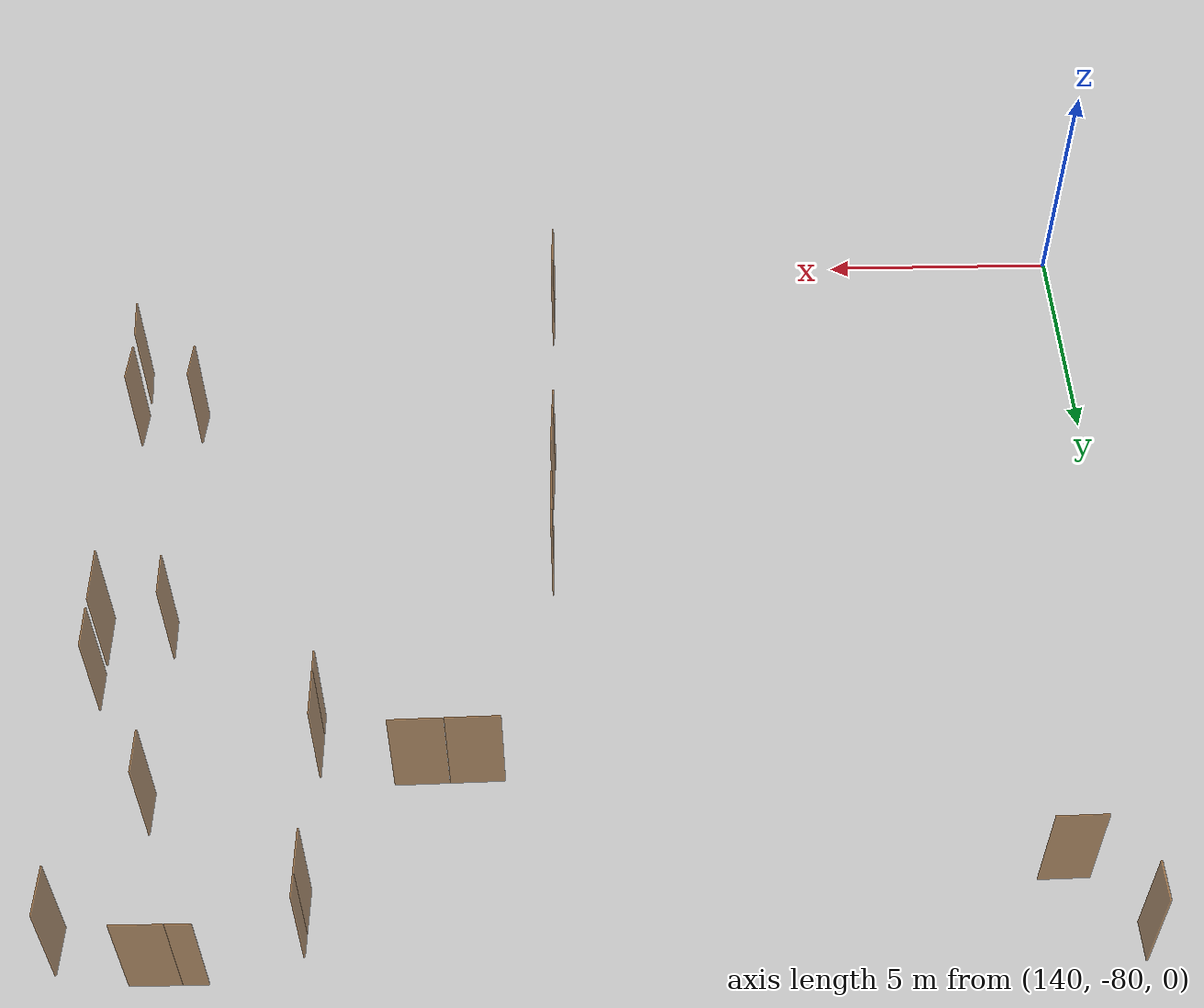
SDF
<sdf version="1.7">
 <world name="sim_world">
  <model name="puerta89">
   <pose>160.44088876173322 -76.53324441789132 0.0 0 0 1.6495602129165794</pose>
   <link name="right">
    <pose>0 0 1.11 0 0 0</pose>
    <visual name="right_visual">
     <geometry><box><size>0.9247008043293189 0.03 2.2</size></box></geometry>
     <material>
      <ambient>0.5 0.25 0 0.6</ambient>
      <diffuse>0.5 0.25 0 0.6</diffuse>
      <pbr><metal><metalness>0.0</metalness></metal></pbr>
     </material>
    </visual>
    <collision name="right_collision">
     <geometry><box><size>0.9247008043293189 0.03 2.2</size></box></geometry>
     <surface><contact><collide_bitmask>0x02</collide_bitmask></contact></surface>
    </collision>
    <inertial>
     <mass>50.0</mass>
     <inertia><ixx>20.17041666666667</ixx><iyy>23.729464906363713</iyy><izz>3.566548239697039</izz></inertia>
    </inertial>
   </link>
   <joint name="right_joint" type="revolute">
    <parent>world</parent>
    <child>right</child>
    <axis><xyz>0 0 1</xyz><limit><lower>0</lower><upper>1.57</upper></limit></axis>
    <pose>0.46735040216465945 0 0 0 0 0</pose>
   </joint>
   <plugin name="register_component" filename="libregister_component.so">
    <component name="Door">
     <v_max_door>0.5</v_max_door>
     <a_max_door>0.3</a_max_door>
     <a_nom_door>0.15</a_nom_door>
     <dx_min_door>0.01</dx_min_door>
     <f_max_door>500.0</f_max_door>
     <ros_interface>true</ros_interface>
     <door name="puerta89" type="SwingDoor" left_joint_name="empty_joint" right_joint_name="right_joint"/>
    </component>
   </plugin>
  </model>
  <model name="puerta90">
   <pose>160.43476705977383 -75.268071642846 0.0 0 0 -1.6405030245786656</pose>
   <link name="right">
    <pose>0 0 1.11 0 0 0</pose>
    <visual name="right_visual">
     <geometry><box><size>0.8701283201981976 0.03 2.2</size></box></geometry>
     <material>
      <ambient>0.5 0.25 0 0.6</ambient>
      <diffuse>0.5 0.25 0 0.6</diffuse>
      <pbr><metal><metalness>0.0</metalness></metal></pbr>
     </material>
    </visual>
    <collision name="right_collision">
     <geometry><box><size>0.8701283201981976 0.03 2.2</size></box></geometry>
     <surface><contact><collide_bitmask>0x02</collide_bitmask></contact></surface>
    </collision>
    <inertial>
     <mass>50.0</mass>
     <inertia><ixx>20.17041666666667</ixx><iyy>23.321347056712245</iyy><izz>3.1584303900455715</izz></inertia>
    </inertial>
   </link>
   <joint name="right_joint" type="revolute">
    <parent>world</parent>
    <child>right</child>
    <axis><xyz>0 0 -1</xyz><limit><lower>0</lower><upper>1.57</upper></limit></axis>
    <pose>0.4400641600990988 0 0 0 0 0</pose>
   </joint>
   <plugin name="register_component" filename="libregister_component.so">
    <component name="Door">
     <v_max_door>0.5</v_max_door>
     <a_max_door>0.3</a_max_door>
     <a_nom_door>0.15</a_nom_door>
     <dx_min_door>0.01</dx_min_door>
     <f_max_door>500.0</f_max_door>
     <ros_interface>true</ros_interface>
     <door name="puerta90" type="SwingDoor" left_joint_name="empty_joint" right_joint_name="right_joint"/>
    </component>
   </plugin>
  </model>
  <model name="puerta91">
   <pose>159.1312021676294 -75.28946604453904 0.0 0 0 -1.650242196632753</pose>
   <link name="right">
    <pose>0 0 1.11 0 0 0</pose>
    <visual name="right_visual">
     <geometry><box><size>0.8154360360300772 0.03 2.2</size></box></geometry>
     <material>
      <ambient>0.5 0.25 0 0.6</ambient>
      <diffuse>0.5 0.25 0 0.6</diffuse>
      <pbr><metal><metalness>0.0</metalness></metal></pbr>
     </material>
    </visual>
    <collision name="right_collision">
     <geometry><box><size>0.8154360360300772 0.03 2.2</size></box></geometry>
     <surface><contact><collide_bitmask>0x02</collide_bitmask></contact></surface>
    </collision>
    <inertial>
     <mass>50.0</mass>
     <inertia><ixx>20.17041666666667</ixx><iyy>22.93723303690186</iyy><izz>2.7743163702351894</izz></inertia>
    </inertial>
   </link>
   <joint name="right_joint" type="revolute">
    <parent>world</parent>
    <child>right</child>
    <axis><xyz>0 0 1</xyz><limit><lower>0</lower><upper>1.57</upper></limit></axis>
    <pose>0.4127180180150386 0 0 0 0 0</pose>
   </joint>
   <plugin name="register_component" filename="libregister_component.so">
    <component name="Door">
     <v_max_door>0.5</v_max_door>
     <a_max_door>0.3</a_max_door>
     <a_nom_door>0.15</a_nom_door>
     <dx_min_door>0.01</dx_min_door>
     <f_max_door>500.0</f_max_door>
     <ros_interface>true</ros_interface>
     <door name="puerta91" type="SwingDoor" left_joint_name="empty_joint" right_joint_name="right_joint"/>
    </component>
   </plugin>
  </model>
  <model name="puerta92">
   <pose>159.15303834162876 -69.58303005313887 0.0 0 0 1.5946024446913702</pose>
   <link name="right">
    <pose>0 0 1.11 0 0 0</pose>
    <visual name="right_visual">
     <geometry><box><size>0.9073371639634981 0.03 2.2</size></box></geometry>
     <material>
      <ambient>0.5 0.25 0 0.6</ambient>
      <diffuse>0.5 0.25 0 0.6</diffuse>
      <pbr><metal><metalness>0.0</metalness></metal></pbr>
     </material>
    </visual>
    <collision name="right_collision">
     <geometry><box><size>0.9073371639634981 0.03 2.2</size></box></geometry>
     <surface><contact><collide_bitmask>0x02</collide_bitmask></contact></surface>
    </collision>
    <inertial>
     <mass>50.0</mass>
     <inertia><ixx>20.17041666666667</ixx><iyy>23.596919704622184</iyy><izz>3.434003037955516</izz></inertia>
    </inertial>
   </link>
   <joint name="right_joint" type="revolute">
    <parent>world</parent>
    <child>right</child>
    <axis><xyz>0 0 -1</xyz><limit><lower>0</lower><upper>1.57</upper></limit></axis>
    <pose>0.45866858198174904 0 0 0 0 0</pose>
   </joint>
   <plugin name="register_component" filename="libregister_component.so">
    <component name="Door">
     <v_max_door>0.5</v_max_door>
     <a_max_door>0.3</a_max_door>
     <a_nom_door>0.15</a_nom_door>
     <dx_min_door>0.01</dx_min_door>
     <f_max_door>500.0</f_max_door>
     <ros_interface>true</ros_interface>
     <door name="puerta92" type="SwingDoor" left_joint_name="empty_joint" right_joint_name="right_joint"/>
    </component>
   </plugin>
  </model>
  <model name="puerta93">
   <pose>160.46541764312366 -69.5769504247325 0.0 0 0 1.5707963267948966</pose>
   <link name="right">
    <pose>0 0 1.11 0 0 0</pose>
    <visual name="right_visual">
     <geometry><box><size>1.1763900470803088 0.03 2.2</size></box></geometry>
     <material>
      <ambient>0.5 0.25 0 0.6</ambient>
      <diffuse>0.5 0.25 0 0.6</diffuse>
      <pbr><metal><metalness>0.0</metalness></metal></pbr>
     </material>
    </visual>
    <collision name="right_collision">
     <geometry><box><size>1.1763900470803088 0.03 2.2</size></box></geometry>
     <surface><contact><collide_bitmask>0x02</collide_bitmask></contact></surface>
    </collision>
    <inertial>
     <mass>50.0</mass>
     <inertia><ixx>20.17041666666667</ixx><iyy>25.93288976195672</iyy><izz>5.769973095290046</izz></inertia>
    </inertial>
   </link>
   <joint name="right_joint" type="revolute">
    <parent>world</parent>
    <child>right</child>
    <axis><xyz>0 0 1</xyz><limit><lower>0</lower><upper>1.57</upper></limit></axis>
    <pose>0.5931950235401544 0 0 0 0 0</pose>
   </joint>
   <plugin name="register_component" filename="libregister_component.so">
    <component name="Door">
     <v_max_door>0.5</v_max_door>
     <a_max_door>0.3</a_max_door>
     <a_nom_door>0.15</a_nom_door>
     <dx_min_door>0.01</dx_min_door>
     <f_max_door>500.0</f_max_door>
     <ros_interface>true</ros_interface>
     <door name="puerta93" type="SwingDoor" left_joint_name="empty_joint" right_joint_name="right_joint"/>
    </component>
   </plugin>
  </model>
  <model name="puerta94">
   <pose>160.46541764312366 -68.34337488797914 0.0 0 0 -1.5707963267948966</pose>
   <link name="right">
    <pose>0 0 1.11 0 0 0</pose>
    <visual name="right_visual">
     <geometry><box><size>0.8727452151851958 0.03 2.2</size></box></geometry>
     <material>
      <ambient>0.5 0.25 0 0.6</ambient>
      <diffuse>0.5 0.25 0 0.6</diffuse>
      <pbr><metal><metalness>0.0</metalness></metal></pbr>
     </material>
    </visual>
    <collision name="right_collision">
     <geometry><box><size>0.8727452151851958 0.03 2.2</size></box></geometry>
     <surface><contact><collide_bitmask>0x02</collide_bitmask></contact></surface>
    </collision>
    <inertial>
     <mass>50.0</mass>
     <inertia><ixx>20.17041666666667</ixx><iyy>23.340350877619397</iyy><izz>3.177434210952724</izz></inertia>
    </inertial>
   </link>
   <joint name="right_joint" type="revolute">
    <parent>world</parent>
    <child>right</child>
    <axis><xyz>0 0 -1</xyz><limit><lower>0</lower><upper>1.57</upper></limit></axis>
    <pose>0.4413726075925979 0 0 0 0 0</pose>
   </joint>
   <plugin name="register_component" filename="libregister_component.so">
    <component name="Door">
     <v_max_door>0.5</v_max_door>
     <a_max_door>0.3</a_max_door>
     <a_nom_door>0.15</a_nom_door>
     <dx_min_door>0.01</dx_min_door>
     <f_max_door>500.0</f_max_door>
     <ros_interface>true</ros_interface>
     <door name="puerta94" type="SwingDoor" left_joint_name="empty_joint" right_joint_name="right_joint"/>
    </component>
   </plugin>
  </model>
  <model name="puerta95">
   <pose>159.15968596300047 -65.51735744428407 0.0 0 0 -1.584109961781512</pose>
   <link name="right">
    <pose>0 0 1.11 0 0 0</pose>
    <visual name="right_visual">
     <geometry><box><size>0.9096410773566336 0.03 2.2</size></box></geometry>
     <material>
      <ambient>0.5 0.25 0 0.6</ambient>
      <diffuse>0.5 0.25 0 0.6</diffuse>
      <pbr><metal><metalness>0.0</metalness></metal></pbr>
     </material>
    </visual>
    <collision name="right_collision">
     <geometry><box><size>0.9096410773566336 0.03 2.2</size></box></geometry>
     <surface><contact><collide_bitmask>0x02</collide_bitmask></contact></surface>
    </collision>
    <inertial>
     <mass>50.0</mass>
     <inertia><ixx>20.17041666666667</ixx><iyy>23.614362040060573</iyy><izz>3.451445373393905</izz></inertia>
    </inertial>
   </link>
   <joint name="right_joint" type="revolute">
    <parent>world</parent>
    <child>right</child>
    <axis><xyz>0 0 1</xyz><limit><lower>0</lower><upper>1.57</upper></limit></axis>
    <pose>0.4598205386783168 0 0 0 0 0</pose>
   </joint>
   <plugin name="register_component" filename="libregister_component.so">
    <component name="Door">
     <v_max_door>0.5</v_max_door>
     <a_max_door>0.3</a_max_door>
     <a_nom_door>0.15</a_nom_door>
     <dx_min_door>0.01</dx_min_door>
     <f_max_door>500.0</f_max_door>
     <ros_interface>true</ros_interface>
     <door name="puerta95" type="SwingDoor" left_joint_name="empty_joint" right_joint_name="right_joint"/>
    </component>
   </plugin>
  </model>
  <model name="puerta96">
   <pose>158.44045961149277 -61.962962651306995 0.0 0 0 -0.0013631082044759458</pose>
   <link name="right">
    <pose>0.2417829091130464 0 1.11 0 0 0</pose>
    <visual name="right_visual">
     <geometry><box><size>0.9571316364521855 0.03 2.2</size></box></geometry>
     <material>
      <ambient>0.5 0.25 0 0.6</ambient>
      <diffuse>0.5 0.25 0 0.6</diffuse>
      <pbr><metal><metalness>0.0</metalness></metal></pbr>
     </material>
    </visual>
    <collision name="right_collision">
     <geometry><box><size>0.9571316364521855 0.03 2.2</size></box></geometry>
     <surface><contact><collide_bitmask>0x02</collide_bitmask></contact></surface>
    </collision>
    <inertial>
     <mass>50.0</mass>
     <inertia><ixx>20.17041666666667</ixx><iyy>23.9837540395735</iyy><izz>3.8208373729068277</izz></inertia>
    </inertial>
   </link>
   <joint name="right_joint" type="revolute">
    <parent>world</parent>
    <child>right</child>
    <axis><xyz>0 0 1</xyz><limit><lower>0</lower><upper>1.57</upper></limit></axis>
    <pose>0.48356581822609274 0 0 0 0 0</pose>
   </joint>
   <link name="left">
    <pose>-0.48356581822609274 0 1.11 0 0 0</pose>
    <visual name="left_visual">
     <geometry><box><size>0.4735658182260928 0.03 2.2</size></box></geometry>
     <material>
      <ambient>0.5 0.25 0 0.6</ambient>
      <diffuse>0.5 0.25 0 0.6</diffuse>
      <pbr><metal><metalness>0.0</metalness></metal></pbr>
     </material>
    </visual>
    <collision name="left_collision">
     <geometry><box><size>0.4735658182260928 0.03 2.2</size></box></geometry>
     <surface><contact><collide_bitmask>0x02</collide_bitmask></contact></surface>
    </collision>
    <inertial>
     <mass>50.0</mass>
     <inertia><ixx>20.17041666666667</ixx><iyy>21.101102434133956</iyy><izz>0.9381857674672867</izz></inertia>
    </inertial>
   </link>
   <joint name="left_joint" type="revolute">
    <parent>world</parent>
    <child>left</child>
    <axis><xyz>0 0 1</xyz><limit><lower>-1.57</lower><upper>0</upper></limit></axis>
    <pose>-0.2417829091130464 0 0 0 0 0</pose>
   </joint>
   <plugin name="register_component" filename="libregister_component.so">
    <component name="Door">
     <v_max_door>0.5</v_max_door>
     <a_max_door>0.3</a_max_door>
     <a_nom_door>0.15</a_nom_door>
     <dx_min_door>0.01</dx_min_door>
     <f_max_door>500.0</f_max_door>
     <ros_interface>true</ros_interface>
     <door name="puerta96" type="DoubleSwingDoor" left_joint_name="left_joint" right_joint_name="right_joint"/>
    </component>
   </plugin>
  </model>
  <model name="puerta97">
   <pose>160.48380378577826 -62.66683215597506 0.0 0 0 1.5333224573307986</pose>
   <link name="right">
    <pose>0 0 1.11 0 0 0</pose>
    <visual name="right_visual">
     <geometry><box><size>0.9715077477447817 0.03 2.2</size></box></geometry>
     <material>
      <ambient>0.5 0.25 0 0.6</ambient>
      <diffuse>0.5 0.25 0 0.6</diffuse>
      <pbr><metal><metalness>0.0</metalness></metal></pbr>
     </material>
    </visual>
    <collision name="right_collision">
     <geometry><box><size>0.9715077477447817 0.03 2.2</size></box></geometry>
     <surface><contact><collide_bitmask>0x02</collide_bitmask></contact></surface>
    </collision>
    <inertial>
     <mass>50.0</mass>
     <inertia><ixx>20.17041666666667</ixx><iyy>24.099280433033915</iyy><izz>3.936363766367243</izz></inertia>
    </inertial>
   </link>
   <joint name="right_joint" type="revolute">
    <parent>world</parent>
    <child>right</child>
    <axis><xyz>0 0 1</xyz><limit><lower>0</lower><upper>1.57</upper></limit></axis>
    <pose>0.49075387387239083 0 0 0 0 0</pose>
   </joint>
   <plugin name="register_component" filename="libregister_component.so">
    <component name="Door">
     <v_max_door>0.5</v_max_door>
     <a_max_door>0.3</a_max_door>
     <a_nom_door>0.15</a_nom_door>
     <dx_min_door>0.01</dx_min_door>
     <f_max_door>500.0</f_max_door>
     <ros_interface>true</ros_interface>
     <door name="puerta97" type="SwingDoor" left_joint_name="empty_joint" right_joint_name="right_joint"/>
    </component>
   </plugin>
  </model>
  <model name="puerta98">
   <pose>156.05135497877384 -63.141737385296956 0.0 0 0 -1.5889700446482695</pose>
   <link name="right">
    <pose>0.22997695713537303 0 1.11 0 0 0</pose>
    <visual name="right_visual">
     <geometry><box><size>0.9099078285414919 0.03 2.2</size></box></geometry>
     <material>
      <ambient>0.5 0.25 0 0.6</ambient>
      <diffuse>0.5 0.25 0 0.6</diffuse>
      <pbr><metal><metalness>0.0</metalness></metal></pbr>
     </material>
    </visual>
    <collision name="right_collision">
     <geometry><box><size>0.9099078285414919 0.03 2.2</size></box></geometry>
     <surface><contact><collide_bitmask>0x02</collide_bitmask></contact></surface>
    </collision>
    <inertial>
     <mass>50.0</mass>
     <inertia><ixx>20.17041666666667</ixx><iyy>23.61638440183789</iyy><izz>3.453467735171221</izz></inertia>
    </inertial>
   </link>
   <joint name="right_joint" type="revolute">
    <parent>world</parent>
    <child>right</child>
    <axis><xyz>0 0 1</xyz><limit><lower>0</lower><upper>1.57</upper></limit></axis>
    <pose>0.45995391427074594 0 0 0 0 0</pose>
   </joint>
   <link name="left">
    <pose>-0.45995391427074594 0 1.11 0 0 0</pose>
    <visual name="left_visual">
     <geometry><box><size>0.44995391427074605 0.03 2.2</size></box></geometry>
     <material>
      <ambient>0.5 0.25 0 0.6</ambient>
      <diffuse>0.5 0.25 0 0.6</diffuse>
      <pbr><metal><metalness>0.0</metalness></metal></pbr>
     </material>
    </visual>
    <collision name="left_collision">
     <geometry><box><size>0.44995391427074605 0.03 2.2</size></box></geometry>
     <surface><contact><collide_bitmask>0x02</collide_bitmask></contact></surface>
    </collision>
    <inertial>
     <mass>50.0</mass>
     <inertia><ixx>20.17041666666667</ixx><iyy>21.01024385403153</iyy><izz>0.847327187364858</izz></inertia>
    </inertial>
   </link>
   <joint name="left_joint" type="revolute">
    <parent>world</parent>
    <child>left</child>
    <axis><xyz>0 0 1</xyz><limit><lower>-1.57</lower><upper>0</upper></limit></axis>
    <pose>-0.22997695713537303 0 0 0 0 0</pose>
   </joint>
   <plugin name="register_component" filename="libregister_component.so">
    <component name="Door">
     <v_max_door>0.5</v_max_door>
     <a_max_door>0.3</a_max_door>
     <a_nom_door>0.15</a_nom_door>
     <dx_min_door>0.01</dx_min_door>
     <f_max_door>500.0</f_max_door>
     <ros_interface>true</ros_interface>
     <door name="puerta98" type="DoubleSwingDoor" left_joint_name="left_joint" right_joint_name="right_joint"/>
    </component>
   </plugin>
  </model>
  <model name="puerta99">
   <pose>156.02343917636807 -66.96914746359583 0.0 0 0 1.5655522411860074</pose>
   <link name="right">
    <pose>0.23668101446797274 0 1.11 0 0 0</pose>
    <visual name="right_visual">
     <geometry><box><size>0.936724057871891 0.03 2.2</size></box></geometry>
     <material>
      <ambient>0.5 0.25 0 0.6</ambient>
      <diffuse>0.5 0.25 0 0.6</diffuse>
      <pbr><metal><metalness>0.0</metalness></metal></pbr>
     </material>
    </visual>
    <collision name="right_collision">
     <geometry><box><size>0.936724057871891 0.03 2.2</size></box></geometry>
     <surface><contact><collide_bitmask>0x02</collide_bitmask></contact></surface>
    </collision>
    <inertial>
     <mass>50.0</mass>
     <inertia><ixx>20.17041666666667</ixx><iyy>23.822716502483264</iyy><izz>3.659799835816591</izz></inertia>
    </inertial>
   </link>
   <joint name="right_joint" type="revolute">
    <parent>world</parent>
    <child>right</child>
    <axis><xyz>0 0 -1</xyz><limit><lower>0</lower><upper>1.57</upper></limit></axis>
    <pose>0.4733620289359455 0 0 0 0 0</pose>
   </joint>
   <link name="left">
    <pose>-0.4733620289359455 0 1.11 0 0 0</pose>
    <visual name="left_visual">
     <geometry><box><size>0.46336202893594547 0.03 2.2</size></box></geometry>
     <material>
      <ambient>0.5 0.25 0 0.6</ambient>
      <diffuse>0.5 0.25 0 0.6</diffuse>
      <pbr><metal><metalness>0.0</metalness></metal></pbr>
     </material>
    </visual>
    <collision name="left_collision">
     <geometry><box><size>0.46336202893594547 0.03 2.2</size></box></geometry>
     <surface><contact><collide_bitmask>0x02</collide_bitmask></contact></surface>
    </collision>
    <inertial>
     <mass>50.0</mass>
     <inertia><ixx>20.17041666666667</ixx><iyy>21.061268207748487</iyy><izz>0.8983515410818167</izz></inertia>
    </inertial>
   </link>
   <joint name="left_joint" type="revolute">
    <parent>world</parent>
    <child>left</child>
    <axis><xyz>0 0 -1</xyz><limit><lower>-1.57</lower><upper>0</upper></limit></axis>
    <pose>-0.23668101446797274 0 0 0 0 0</pose>
   </joint>
   <plugin name="register_component" filename="libregister_component.so">
    <component name="Door">
     <v_max_door>0.5</v_max_door>
     <a_max_door>0.3</a_max_door>
     <a_nom_door>0.15</a_nom_door>
     <dx_min_door>0.01</dx_min_door>
     <f_max_door>500.0</f_max_door>
     <ros_interface>true</ros_interface>
     <door name="puerta99" type="DoubleSwingDoor" left_joint_name="left_joint" right_joint_name="right_joint"/>
    </component>
   </plugin>
  </model>
  <model name="puerta100">
   <pose>151.53261331459652 -71.29571817451266 0.0 0 0 -1.5707963267948966</pose>
   <link name="right">
    <pose>0.24978367181506655 0 1.11 0 0 0</pose>
    <visual name="right_visual">
     <geometry><box><size>0.9891346872602662 0.03 2.2</size></box></geometry>
     <material>
      <ambient>0.5 0.25 0 0.6</ambient>
      <diffuse>0.5 0.25 0 0.6</diffuse>
      <pbr><metal><metalness>0.0</metalness></metal></pbr>
     </material>
    </visual>
    <collision name="right_collision">
     <geometry><box><size>0.9891346872602662 0.03 2.2</size></box></geometry>
     <surface><contact><collide_bitmask>0x02</collide_bitmask></contact></surface>
    </collision>
    <inertial>
     <mass>50.0</mass>
     <inertia><ixx>20.17041666666667</ixx><iyy>24.243280956422772</iyy><izz>4.080364289756103</izz></inertia>
    </inertial>
   </link>
   <joint name="right_joint" type="revolute">
    <parent>world</parent>
    <child>right</child>
    <axis><xyz>0 0 -1</xyz><limit><lower>0</lower><upper>1.57</upper></limit></axis>
    <pose>0.4995673436301331 0 0 0 0 0</pose>
   </joint>
   <link name="left">
    <pose>-0.4995673436301331 0 1.11 0 0 0</pose>
    <visual name="left_visual">
     <geometry><box><size>0.4895673436301331 0.03 2.2</size></box></geometry>
     <material>
      <ambient>0.5 0.25 0 0.6</ambient>
      <diffuse>0.5 0.25 0 0.6</diffuse>
      <pbr><metal><metalness>0.0</metalness></metal></pbr>
     </material>
    </visual>
    <collision name="left_collision">
     <geometry><box><size>0.4895673436301331 0.03 2.2</size></box></geometry>
     <surface><contact><collide_bitmask>0x02</collide_bitmask></contact></surface>
    </collision>
    <inertial>
     <mass>50.0</mass>
     <inertia><ixx>20.17041666666667</ixx><iyy>21.16531743312111</iyy><izz>1.0024007664544368</izz></inertia>
    </inertial>
   </link>
   <joint name="left_joint" type="revolute">
    <parent>world</parent>
    <child>left</child>
    <axis><xyz>0 0 -1</xyz><limit><lower>-1.57</lower><upper>0</upper></limit></axis>
    <pose>-0.24978367181506655 0 0 0 0 0</pose>
   </joint>
   <plugin name="register_component" filename="libregister_component.so">
    <component name="Door">
     <v_max_door>0.5</v_max_door>
     <a_max_door>0.3</a_max_door>
     <a_nom_door>0.15</a_nom_door>
     <dx_min_door>0.01</dx_min_door>
     <f_max_door>500.0</f_max_door>
     <ros_interface>true</ros_interface>
     <door name="puerta100" type="DoubleSwingDoor" left_joint_name="left_joint" right_joint_name="right_joint"/>
    </component>
   </plugin>
  </model>
  <model name="puerta101">
   <pose>151.50812650675906 -73.53956386554972 0.0 0 0 1.5372584369946147</pose>
   <link name="right">
    <pose>0.24342019335349463 0 1.11 0 0 0</pose>
    <visual name="right_visual">
     <geometry><box><size>0.9636807734139783 0.03 2.2</size></box></geometry>
     <material>
      <ambient>0.5 0.25 0 0.6</ambient>
      <diffuse>0.5 0.25 0 0.6</diffuse>
      <pbr><metal><metalness>0.0</metalness></metal></pbr>
     </material>
    </visual>
    <collision name="right_collision">
     <geometry><box><size>0.9636807734139783 0.03 2.2</size></box></geometry>
     <surface><contact><collide_bitmask>0x02</collide_bitmask></contact></surface>
    </collision>
    <inertial>
     <mass>50.0</mass>
     <inertia><ixx>20.17041666666667</ixx><iyy>24.036169304365686</iyy><izz>3.8732526376990144</izz></inertia>
    </inertial>
   </link>
   <joint name="right_joint" type="revolute">
    <parent>world</parent>
    <child>right</child>
    <axis><xyz>0 0 1</xyz><limit><lower>0</lower><upper>1.57</upper></limit></axis>
    <pose>0.48684038670698915 0 0 0 0 0</pose>
   </joint>
   <link name="left">
    <pose>-0.48684038670698915 0 1.11 0 0 0</pose>
    <visual name="left_visual">
     <geometry><box><size>0.47684038670698925 0.03 2.2</size></box></geometry>
     <material>
      <ambient>0.5 0.25 0 0.6</ambient>
      <diffuse>0.5 0.25 0 0.6</diffuse>
      <pbr><metal><metalness>0.0</metalness></metal></pbr>
     </material>
    </visual>
    <collision name="left_collision">
     <geometry><box><size>0.47684038670698925 0.03 2.2</size></box></geometry>
     <surface><contact><collide_bitmask>0x02</collide_bitmask></contact></surface>
    </collision>
    <inertial>
     <mass>50.0</mass>
     <inertia><ixx>20.17041666666667</ixx><iyy>21.11406980997863</iyy><izz>0.9511531433119628</izz></inertia>
    </inertial>
   </link>
   <joint name="left_joint" type="revolute">
    <parent>world</parent>
    <child>left</child>
    <axis><xyz>0 0 1</xyz><limit><lower>-1.57</lower><upper>0</upper></limit></axis>
    <pose>-0.24342019335349463 0 0 0 0 0</pose>
   </joint>
   <plugin name="register_component" filename="libregister_component.so">
    <component name="Door">
     <v_max_door>0.5</v_max_door>
     <a_max_door>0.3</a_max_door>
     <a_nom_door>0.15</a_nom_door>
     <dx_min_door>0.01</dx_min_door>
     <f_max_door>500.0</f_max_door>
     <ros_interface>true</ros_interface>
     <door name="puerta101" type="DoubleSwingDoor" left_joint_name="left_joint" right_joint_name="right_joint"/>
    </component>
   </plugin>
  </model>
  <model name="puerta102">
   <pose>151.486816252172 -78.41109227150902 0.0 0 0 -1.591429125607501</pose>
   <link name="right">
    <pose>0.2484551401646219 0 1.11 0 0 0</pose>
    <visual name="right_visual">
     <geometry><box><size>0.9838205606584873 0.03 2.2</size></box></geometry>
     <material>
      <ambient>0.5 0.25 0 0.6</ambient>
      <diffuse>0.5 0.25 0 0.6</diffuse>
      <pbr><metal><metalness>0.0</metalness></metal></pbr>
     </material>
    </visual>
    <collision name="right_collision">
     <geometry><box><size>0.9838205606584873 0.03 2.2</size></box></geometry>
     <surface><contact><collide_bitmask>0x02</collide_bitmask></contact></surface>
    </collision>
    <inertial>
     <mass>50.0</mass>
     <inertia><ixx>20.17041666666667</ixx><iyy>24.19959539822659</iyy><izz>4.036678731559919</izz></inertia>
    </inertial>
   </link>
   <joint name="right_joint" type="revolute">
    <parent>world</parent>
    <child>right</child>
    <axis><xyz>0 0 -1</xyz><limit><lower>0</lower><upper>1.57</upper></limit></axis>
    <pose>0.49691028032924367 0 0 0 0 0</pose>
   </joint>
   <link name="left">
    <pose>-0.49691028032924367 0 1.11 0 0 0</pose>
    <visual name="left_visual">
     <geometry><box><size>0.48691028032924377 0.03 2.2</size></box></geometry>
     <material>
      <ambient>0.5 0.25 0 0.6</ambient>
      <diffuse>0.5 0.25 0 0.6</diffuse>
      <pbr><metal><metalness>0.0</metalness></metal></pbr>
     </material>
    </visual>
    <collision name="left_collision">
     <geometry><box><size>0.48691028032924377 0.03 2.2</size></box></geometry>
     <surface><contact><collide_bitmask>0x02</collide_bitmask></contact></surface>
    </collision>
    <inertial>
     <mass>50.0</mass>
     <inertia><ixx>20.17041666666667</ixx><iyy>21.154506754542933</iyy><izz>0.9915900878762616</izz></inertia>
    </inertial>
   </link>
   <joint name="left_joint" type="revolute">
    <parent>world</parent>
    <child>left</child>
    <axis><xyz>0 0 -1</xyz><limit><lower>-1.57</lower><upper>0</upper></limit></axis>
    <pose>-0.2484551401646219 0 0 0 0 0</pose>
   </joint>
   <plugin name="register_component" filename="libregister_component.so">
    <component name="Door">
     <v_max_door>0.5</v_max_door>
     <a_max_door>0.3</a_max_door>
     <a_nom_door>0.15</a_nom_door>
     <dx_min_door>0.01</dx_min_door>
     <f_max_door>500.0</f_max_door>
     <ros_interface>true</ros_interface>
     <door name="puerta102" type="DoubleSwingDoor" left_joint_name="left_joint" right_joint_name="right_joint"/>
    </component>
   </plugin>
  </model>
  <model name="puerta154">
   <pose>140.86652586050928 -62.45894673067454 0.0 0 0 1.5883190042706128</pose>
   <link name="right">
    <pose>0 0 1.11 0 0 0</pose>
    <visual name="right_visual">
     <geometry><box><size>0.7896044076444623 0.03 2.2</size></box></geometry>
     <material>
      <ambient>0.5 0.25 0 0.6</ambient>
      <diffuse>0.5 0.25 0 0.6</diffuse>
      <pbr><metal><metalness>0.0</metalness></metal></pbr>
     </material>
    </visual>
    <collision name="right_collision">
     <geometry><box><size>0.7896044076444623 0.03 2.2</size></box></geometry>
     <surface><contact><collide_bitmask>0x02</collide_bitmask></contact></surface>
    </collision>
    <inertial>
     <mass>50.0</mass>
     <inertia><ixx>20.17041666666667</ixx><iyy>22.764479669048182</iyy><izz>2.6015630023815093</izz></inertia>
    </inertial>
   </link>
   <joint name="right_joint" type="revolute">
    <parent>world</parent>
    <child>right</child>
    <axis><xyz>0 0 -1</xyz><limit><lower>0</lower><upper>1.57</upper></limit></axis>
    <pose>0.39980220382223114 0 0 0 0 0</pose>
   </joint>
   <plugin name="register_component" filename="libregister_component.so">
    <component name="Door">
     <v_max_door>0.5</v_max_door>
     <a_max_door>0.3</a_max_door>
     <a_nom_door>0.15</a_nom_door>
     <dx_min_door>0.01</dx_min_door>
     <f_max_door>500.0</f_max_door>
     <ros_interface>true</ros_interface>
     <door name="puerta154" type="SwingDoor" left_joint_name="empty_joint" right_joint_name="right_joint"/>
    </component>
   </plugin>
  </model>
  <model name="puerta156">
   <pose>142.0985446758022 -63.7868722099975 0.0 0 0 0.023340412605322203</pose>
   <link name="right">
    <pose>0 0 1.11 0 0 0</pose>
    <visual name="right_visual">
     <geometry><box><size>0.9815229744686816 0.03 2.2</size></box></geometry>
     <material>
      <ambient>0.5 0.25 0 0.6</ambient>
      <diffuse>0.5 0.25 0 0.6</diffuse>
      <pbr><metal><metalness>0.0</metalness></metal></pbr>
     </material>
    </visual>
    <collision name="right_collision">
     <geometry><box><size>0.9815229744686816 0.03 2.2</size></box></geometry>
     <surface><contact><collide_bitmask>0x02</collide_bitmask></contact></surface>
    </collision>
    <inertial>
     <mass>50.0</mass>
     <inertia><ixx>20.17041666666667</ixx><iyy>24.18078062254104</iyy><izz>4.017863955874368</izz></inertia>
    </inertial>
   </link>
   <joint name="right_joint" type="revolute">
    <parent>world</parent>
    <child>right</child>
    <axis><xyz>0 0 1</xyz><limit><lower>0</lower><upper>1.57</upper></limit></axis>
    <pose>0.4957614872343408 0 0 0 0 0</pose>
   </joint>
   <plugin name="register_component" filename="libregister_component.so">
    <component name="Door">
     <v_max_door>0.5</v_max_door>
     <a_max_door>0.3</a_max_door>
     <a_nom_door>0.15</a_nom_door>
     <dx_min_door>0.01</dx_min_door>
     <f_max_door>500.0</f_max_door>
     <ros_interface>true</ros_interface>
     <door name="puerta156" type="SwingDoor" left_joint_name="empty_joint" right_joint_name="right_joint"/>
    </component>
   </plugin>
  </model>
  <model name="puerta157">
   <pose>153.52910858763283 -66.10093866096707 0.0 0 0 0.024184844315332625</pose>
   <link name="right">
    <pose>0.5319547557124498 0 1.11 0 0 0</pose>
    <visual name="right_visual">
     <geometry><box><size>1.0539095114248995 0.03 2.2</size></box></geometry>
     <material>
      <ambient>0.5 0.25 0 0.6</ambient>
      <diffuse>0.5 0.25 0 0.6</diffuse>
      <pbr><metal><metalness>0.0</metalness></metal></pbr>
     </material>
    </visual>
    <collision name="right_collision">
     <geometry><box><size>1.0539095114248995 0.03 2.2</size></box></geometry>
     <surface><contact><collide_bitmask>0x02</collide_bitmask></contact></surface>
    </collision>
    <inertial>
     <mass>50.0</mass>
     <inertia><ixx>20.17041666666667</ixx><iyy>24.7946885761328</iyy><izz>4.631771909466127</izz></inertia>
    </inertial>
   </link>
   <joint name="right_joint" type="revolute">
    <parent>world</parent>
    <child>right</child>
    <axis><xyz>0 0 -1</xyz><limit><lower>0</lower><upper>1.57</upper></limit></axis>
    <pose>0.5319547557124498 0 0 0 0 0</pose>
   </joint>
   <link name="left">
    <pose>-0.5319547557124498 0 1.11 0 0 0</pose>
    <visual name="left_visual">
     <geometry><box><size>1.0539095114248995 0.03 2.2</size></box></geometry>
     <material>
      <ambient>0.5 0.25 0 0.6</ambient>
      <diffuse>0.5 0.25 0 0.6</diffuse>
      <pbr><metal><metalness>0.0</metalness></metal></pbr>
     </material>
    </visual>
    <collision name="left_collision">
     <geometry><box><size>1.0539095114248995 0.03 2.2</size></box></geometry>
     <surface><contact><collide_bitmask>0x02</collide_bitmask></contact></surface>
    </collision>
    <inertial>
     <mass>50.0</mass>
     <inertia><ixx>20.17041666666667</ixx><iyy>24.7946885761328</iyy><izz>4.631771909466127</izz></inertia>
    </inertial>
   </link>
   <joint name="left_joint" type="revolute">
    <parent>world</parent>
    <child>left</child>
    <axis><xyz>0 0 -1</xyz><limit><lower>-1.57</lower><upper>0</upper></limit></axis>
    <pose>-0.5319547557124498 0 0 0 0 0</pose>
   </joint>
   <plugin name="register_component" filename="libregister_component.so">
    <component name="Door">
     <v_max_door>0.5</v_max_door>
     <a_max_door>0.3</a_max_door>
     <a_nom_door>0.15</a_nom_door>
     <dx_min_door>0.01</dx_min_door>
     <f_max_door>500.0</f_max_door>
     <ros_interface>true</ros_interface>
     <door name="puerta157" type="DoubleSwingDoor" left_joint_name="left_joint" right_joint_name="right_joint"/>
    </component>
   </plugin>
  </model>
 </world>
</sdf>
